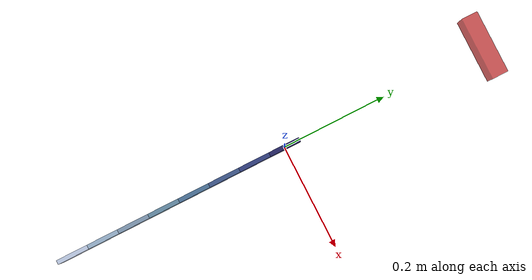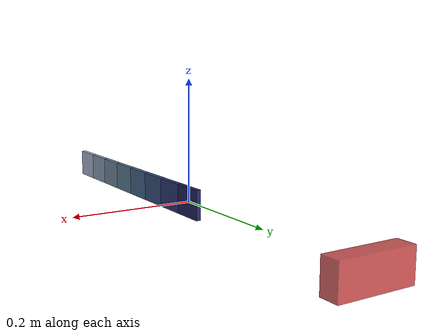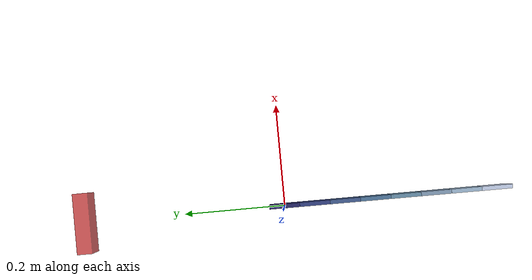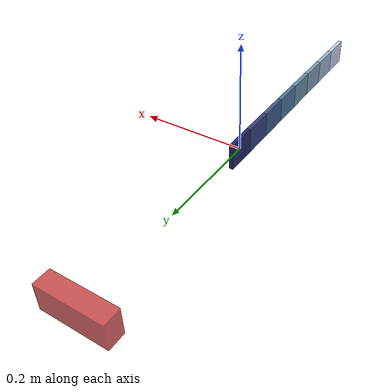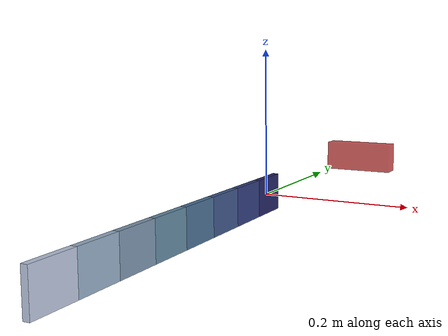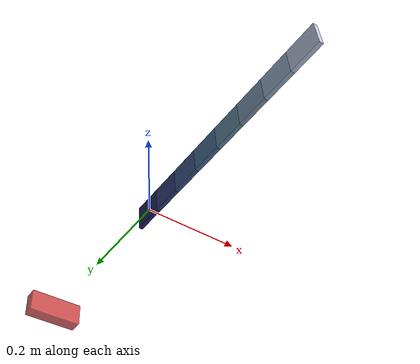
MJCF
<mujoco model="Eel3D_RibbonFish_Obstacle">
    <compiler angle="degree" inertiafromgeom="true"/>
    <option timestep="0.01" gravity="0 0 0" integrator="RK4"/>

    <default>
        <joint damping="0.2" stiffness="0" armature="0.02"/>
        <motor ctrlrange="-1 1" ctrllimited="true"/>
        <geom solref="0.002 1" solimp="0.9 0.95 0.001"/>
    </default>

    <asset>
        <!-- Gradient from a dark head to a light tail. -->
        <material name="seg1_mat" rgba="0.15 0.15 0.4 1"/>
        <material name="seg2_mat" rgba="0.2 0.25 0.5 1"/>
        <material name="seg3_mat" rgba="0.25 0.35 0.55 1"/>
        <material name="seg4_mat" rgba="0.3 0.45 0.6 1"/>
        <material name="seg5_mat" rgba="0.4 0.55 0.65 1"/>
        <material name="seg6_mat" rgba="0.5 0.6 0.7 1"/>
        <material name="seg7_mat" rgba="0.6 0.7 0.8 1"/>
        <material name="seg8_mat" rgba="0.75 0.8 0.9 1"/>
        <material name="obstacle_mat" rgba="0.8 0.2 0.2 0.8"/>
    </asset>

    <worldbody>
        <!-- Static jointless obstacle. -->
        <!-- Positioned between the eel start and target. -->
        <!-- MuJoCo y offset is 0.4 m, near normalized LBM y=0.62. -->
        <!-- The vertical pillar blocks a straight path. -->
        <body name="obstacle" pos="0.0 0.4 0.0">
            <!-- No joint keeps the obstacle fixed in world space. -->
            <geom name="obstacle_geom" type="box"
                  size="0.06 0.015 0.025"
                  pos="0 0 0"
                  material="obstacle_mat"
                  density="8000"
                  contype="1" conaffinity="1"/>
        </body>

        <!-- Body segment 1: head. -->
        <!-- Each link uses paired yaw and roll joints. -->
        <!-- Eight segments use seven joint pairs. -->
        <body name="seg1" pos="0 0 0">
            <freejoint name="root_joint"/>

            <!-- Flat box: x=0.008, y=0.06, z=0.05. -->
            <geom name="seg1_geom" type="box"
                  size="0.004 0.03 0.025"
                  pos="0 0 0"
                  material="seg1_mat"
                  density="5000"/>

            <!-- Body segment 2. -->
            <body name="seg2" pos="0 -0.03 0">
                <!-- Yaw around z for lateral motion. -->
                <joint name="joint1_yaw" type="hinge" axis="0 0 1" limited="true" range="-35 35"/>
                <!-- Roll around y. -->
                <joint name="joint1_roll" type="hinge" axis="0 1 0" limited="true" range="-30 30"/>

                <geom name="seg2_geom" type="box"
                      size="0.004 0.03 0.025"
                      pos="0 -0.03 0"
                      material="seg2_mat"
                      density="5000"/>

                <!-- Body segment 3. -->
                <body name="seg3" pos="0 -0.06 0">
                    <joint name="joint2_yaw" type="hinge" axis="0 0 1" limited="true" range="-35 35"/>
                    <joint name="joint2_roll" type="hinge" axis="0 1 0" limited="true" range="-30 30"/>

                    <geom name="seg3_geom" type="box"
                          size="0.004 0.03 0.025"
                          pos="0 -0.03 0"
                          material="seg3_mat"
                          density="5000"/>

                    <!-- Body segment 4. -->
                    <body name="seg4" pos="0 -0.06 0">
                        <joint name="joint3_yaw" type="hinge" axis="0 0 1" limited="true" range="-40 40"/>
                        <joint name="joint3_roll" type="hinge" axis="0 1 0" limited="true" range="-35 35"/>

                        <geom name="seg4_geom" type="box"
                              size="0.004 0.03 0.025"
                              pos="0 -0.03 0"
                              material="seg4_mat"
                              density="4500"/>

                        <!-- Body segment 5. -->
                        <body name="seg5" pos="0 -0.06 0">
                            <joint name="joint4_yaw" type="hinge" axis="0 0 1" limited="true" range="-40 40"/>
                            <joint name="joint4_roll" type="hinge" axis="0 1 0" limited="true" range="-35 35"/>

                            <geom name="seg5_geom" type="box"
                                  size="0.004 0.03 0.025"
                                  pos="0 -0.03 0"
                                  material="seg5_mat"
                                  density="4000"/>

                            <!-- Body segment 6. -->
                            <body name="seg6" pos="0 -0.06 0">
                                <joint name="joint5_yaw" type="hinge" axis="0 0 1" limited="true" range="-45 45"/>
                                <joint name="joint5_roll" type="hinge" axis="0 1 0" limited="true" range="-40 40"/>

                                <geom name="seg6_geom" type="box"
                                      size="0.004 0.03 0.025"
                                      pos="0 -0.03 0"
                                      material="seg6_mat"
                                      density="3500"/>

                                <!-- Body segment 7. -->
                                <body name="seg7" pos="0 -0.06 0">
                                    <joint name="joint6_yaw" type="hinge" axis="0 0 1" limited="true" range="-45 45"/>
                                    <joint name="joint6_roll" type="hinge" axis="0 1 0" limited="true" range="-40 40"/>

                                    <geom name="seg7_geom" type="box"
                                          size="0.004 0.03 0.025"
                                          pos="0 -0.03 0"
                                          material="seg7_mat"
                                          density="3000"/>

                                    <!-- Body segment 8: tail. -->
                                    <body name="seg8" pos="0 -0.06 0">
                                        <joint name="joint7_yaw" type="hinge" axis="0 0 1" limited="true" range="-50 50"/>
                                        <joint name="joint7_roll" type="hinge" axis="0 1 0" limited="true" range="-45 45"/>

                                        <geom name="seg8_geom" type="box"
                                              size="0.004 0.03 0.025"
                                              pos="0 -0.03 0"
                                              material="seg8_mat"
                                              density="2500"/>
                                    </body>
                                </body>
                            </body>
                        </body>
                    </body>
                </body>
            </body>
        </body>

        <light directional="true" diffuse="0.9 0.9 0.9" pos="0 0 3" dir="0 0 -1"/>
    </worldbody>

    <actuator>
        <!-- Fourteen position actuators for seven joint pairs. -->
        <position name="pos1_yaw" joint="joint1_yaw" kp="2.0" kv="0.2" ctrlrange="-0.873 0.873" forcerange="-1.0 1.0"/>
        <position name="pos1_roll" joint="joint1_roll" kp="2.0" kv="0.2" ctrlrange="-0.785 0.785" forcerange="-1.0 1.0"/>

        <position name="pos2_yaw" joint="joint2_yaw" kp="2.0" kv="0.2" ctrlrange="-0.873 0.873" forcerange="-1.0 1.0"/>
        <position name="pos2_roll" joint="joint2_roll" kp="2.0" kv="0.2" ctrlrange="-0.785 0.785" forcerange="-1.0 1.0"/>

        <position name="pos3_yaw" joint="joint3_yaw" kp="2.0" kv="0.2" ctrlrange="-0.873 0.873" forcerange="-1.0 1.0"/>
        <position name="pos3_roll" joint="joint3_roll" kp="2.0" kv="0.2" ctrlrange="-0.785 0.785" forcerange="-1.0 1.0"/>

        <position name="pos4_yaw" joint="joint4_yaw" kp="2.0" kv="0.2" ctrlrange="-0.873 0.873" forcerange="-1.0 1.0"/>
        <position name="pos4_roll" joint="joint4_roll" kp="2.0" kv="0.2" ctrlrange="-0.785 0.785" forcerange="-1.0 1.0"/>

        <position name="pos5_yaw" joint="joint5_yaw" kp="2.0" kv="0.2" ctrlrange="-0.873 0.873" forcerange="-1.0 1.0"/>
        <position name="pos5_roll" joint="joint5_roll" kp="2.0" kv="0.2" ctrlrange="-0.785 0.785" forcerange="-1.0 1.0"/>

        <position name="pos6_yaw" joint="joint6_yaw" kp="2.0" kv="0.2" ctrlrange="-0.873 0.873" forcerange="-1.0 1.0"/>
        <position name="pos6_roll" joint="joint6_roll" kp="2.0" kv="0.2" ctrlrange="-0.785 0.785" forcerange="-1.0 1.0"/>

        <position name="pos7_yaw" joint="joint7_yaw" kp="2.0" kv="0.2" ctrlrange="-0.873 0.873" forcerange="-1.0 1.0"/>
        <position name="pos7_roll" joint="joint7_roll" kp="2.0" kv="0.2" ctrlrange="-0.785 0.785" forcerange="-1.0 1.0"/>
    </actuator>
</mujoco>
